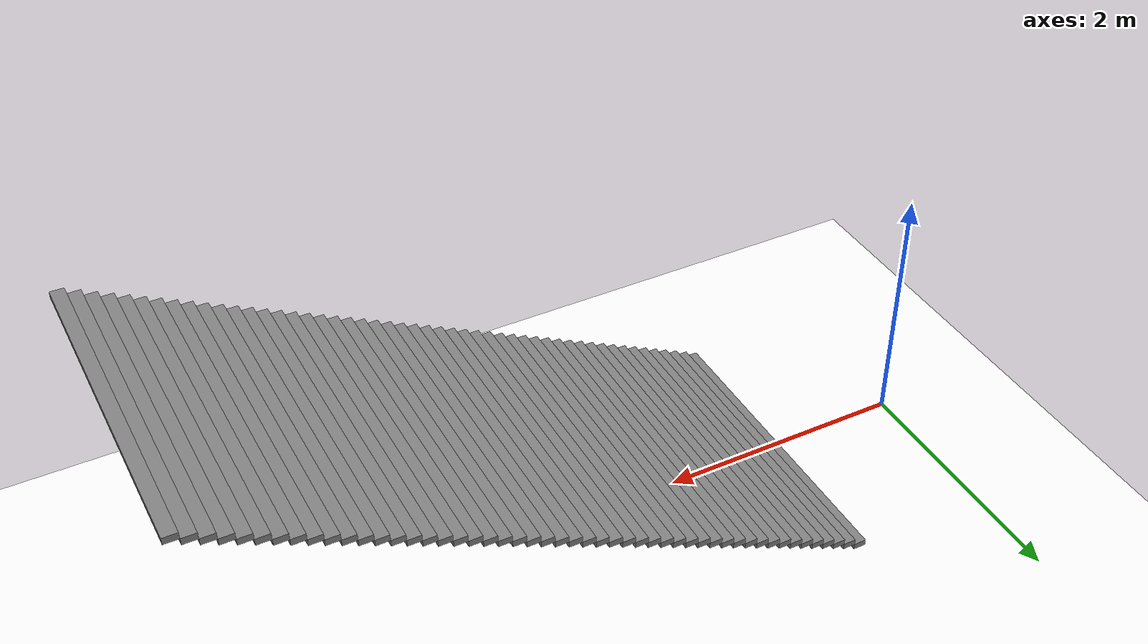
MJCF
<mujoco model="scene">

    <statistic center="0 0 0.1" extent="0.8"/>

    <visual>
        <headlight diffuse="0.6 0.6 0.6" ambient="0.3 0.3 0.3" specular="0 0 0"/>
        <rgba haze="0.99 0.99 0.99 1"/>
        <global azimuth="-130" elevation="-20"/>
    </visual>

    <asset>
        <texture
                type="skybox"
                builtin="gradient"
                rgb1="0.99 0.99 0.99"
                rgb2="0.99 0.99 0.99"
                width="512"
                height="3072"
        />
        <texture
                type="2d"
                name="groundplane"
                builtin="checker"
                mark="edge"
                rgb1="0.93 0.93 0.93"
                rgb2="1.0 1.0 1.0"
                markrgb="1 1 1"
                width="200"
                height="200"
        />
        <material name="groundplane" texture="groundplane" texuniform="true" texrepeat="5 5" reflectance="0.05"/>
    </asset>

    <worldbody>
        <light pos="0 0 1.5" dir="0 0 -1" directional="true"/>
        <geom name="floor" size="0 0 0.05" type="plane" material="groundplane"/>
        <geom pos="1.1 0.0 0.025" type="box" size="0.05 1.25 0.025" quat="1.0 0.0 0.0 0.0"/>
        <geom pos="1.2 0.0 0.07500000000000001" type="box" size="0.05 1.25 0.025" quat="1.0 0.0 0.0 0.0"/>
        <geom pos="1.3 0.0 0.125" type="box" size="0.05 1.25 0.025" quat="1.0 0.0 0.0 0.0"/>
        <geom pos="1.4 0.0 0.175" type="box" size="0.05 1.25 0.025" quat="1.0 0.0 0.0 0.0"/>
        <geom pos="1.5 0.0 0.22499999999999998" type="box" size="0.05 1.25 0.025" quat="1.0 0.0 0.0 0.0"/>
        <geom pos="1.6 0.0 0.27499999999999997" type="box" size="0.05 1.25 0.025" quat="1.0 0.0 0.0 0.0"/>
        <geom pos="1.7 0.0 0.32499999999999996" type="box" size="0.05 1.25 0.025" quat="1.0 0.0 0.0 0.0"/>
        <geom pos="1.7999999999999998 0.0 0.37499999999999994" type="box" size="0.05 1.25 0.025"
              quat="1.0 0.0 0.0 0.0"/>
        <geom pos="1.9 0.0 0.42499999999999993" type="box" size="0.05 1.25 0.025" quat="1.0 0.0 0.0 0.0"/>
        <geom pos="2.0 0.0 0.4749999999999999" type="box" size="0.05 1.25 0.025" quat="1.0 0.0 0.0 0.0"/>
        <geom pos="2.0999999999999996 0.0 0.5249999999999999" type="box" size="0.05 1.25 0.025" quat="1.0 0.0 0.0 0.0"/>
        <geom pos="2.2 0.0 0.575" type="box" size="0.05 1.25 0.025" quat="1.0 0.0 0.0 0.0"/>
        <geom pos="2.3 0.0 0.625" type="box" size="0.05 1.25 0.025" quat="1.0 0.0 0.0 0.0"/>
        <geom pos="2.4000000000000004 0.0 0.675" type="box" size="0.05 1.25 0.025" quat="1.0 0.0 0.0 0.0"/>
        <geom pos="2.5 0.0 0.7250000000000001" type="box" size="0.05 1.25 0.025" quat="1.0 0.0 0.0 0.0"/>
        <geom pos="2.6000000000000005 0.0 0.7750000000000001" type="box" size="0.05 1.25 0.025" quat="1.0 0.0 0.0 0.0"/>
        <geom pos="2.7 0.0 0.8250000000000002" type="box" size="0.05 1.25 0.025" quat="1.0 0.0 0.0 0.0"/>
        <geom pos="2.8000000000000007 0.0 0.8750000000000002" type="box" size="0.05 1.25 0.025" quat="1.0 0.0 0.0 0.0"/>
        <geom pos="2.9000000000000004 0.0 0.9250000000000003" type="box" size="0.05 1.25 0.025" quat="1.0 0.0 0.0 0.0"/>
        <geom pos="3.0000000000000004 0.0 0.9750000000000003" type="box" size="0.05 1.25 0.025" quat="1.0 0.0 0.0 0.0"/>
        <geom pos="3.1000000000000005 0.0 1.0250000000000004" type="box" size="0.05 1.25 0.025" quat="1.0 0.0 0.0 0.0"/>
        <geom pos="3.2000000000000006 0.0 1.0750000000000004" type="box" size="0.05 1.25 0.025" quat="1.0 0.0 0.0 0.0"/>
        <geom pos="3.3000000000000007 0.0 1.1250000000000004" type="box" size="0.05 1.25 0.025" quat="1.0 0.0 0.0 0.0"/>
        <geom pos="3.400000000000001 0.0 1.1750000000000005" type="box" size="0.05 1.25 0.025" quat="1.0 0.0 0.0 0.0"/>
        <geom pos="3.500000000000001 0.0 1.2250000000000005" type="box" size="0.05 1.25 0.025" quat="1.0 0.0 0.0 0.0"/>
        <geom pos="3.600000000000001 0.0 1.2750000000000006" type="box" size="0.05 1.25 0.025" quat="1.0 0.0 0.0 0.0"/>
        <geom pos="3.700000000000001 0.0 1.3250000000000006" type="box" size="0.05 1.25 0.025" quat="1.0 0.0 0.0 0.0"/>
        <geom pos="3.800000000000001 0.0 1.3750000000000007" type="box" size="0.05 1.25 0.025" quat="1.0 0.0 0.0 0.0"/>
        <geom pos="3.9000000000000012 0.0 1.4250000000000007" type="box" size="0.05 1.25 0.025" quat="1.0 0.0 0.0 0.0"/>
        <geom pos="4.000000000000002 0.0 1.4750000000000008" type="box" size="0.05 1.25 0.025" quat="1.0 0.0 0.0 0.0"/>
        <geom pos="4.100000000000001 0.0 1.5250000000000008" type="box" size="0.05 1.25 0.025" quat="1.0 0.0 0.0 0.0"/>
        <geom pos="4.200000000000001 0.0 1.5750000000000008" type="box" size="0.05 1.25 0.025" quat="1.0 0.0 0.0 0.0"/>
        <geom pos="4.300000000000002 0.0 1.6250000000000009" type="box" size="0.05 1.25 0.025" quat="1.0 0.0 0.0 0.0"/>
        <geom pos="4.400000000000002 0.0 1.675000000000001" type="box" size="0.05 1.25 0.025" quat="1.0 0.0 0.0 0.0"/>
        <geom pos="4.500000000000002 0.0 1.725000000000001" type="box" size="0.05 1.25 0.025" quat="1.0 0.0 0.0 0.0"/>
        <geom pos="4.600000000000001 0.0 1.775000000000001" type="box" size="0.05 1.25 0.025" quat="1.0 0.0 0.0 0.0"/>
        <geom pos="4.700000000000002 0.0 1.825000000000001" type="box" size="0.05 1.25 0.025" quat="1.0 0.0 0.0 0.0"/>
        <geom pos="4.8000000000000025 0.0 1.875000000000001" type="box" size="0.05 1.25 0.025" quat="1.0 0.0 0.0 0.0"/>
        <geom pos="4.900000000000002 0.0 1.9250000000000012" type="box" size="0.05 1.25 0.025" quat="1.0 0.0 0.0 0.0"/>
        <geom pos="5.000000000000002 0.0 1.9750000000000012" type="box" size="0.05 1.25 0.025" quat="1.0 0.0 0.0 0.0"/>
        <geom pos="5.100000000000001 0.0 2.0250000000000012" type="box" size="0.05 1.25 0.025" quat="1.0 0.0 0.0 0.0"/>
        <geom pos="5.200000000000001 0.0 2.075000000000001" type="box" size="0.05 1.25 0.025" quat="1.0 0.0 0.0 0.0"/>
        <geom pos="5.300000000000001 0.0 2.125000000000001" type="box" size="0.05 1.25 0.025" quat="1.0 0.0 0.0 0.0"/>
        <geom pos="5.4 0.0 2.1750000000000007" type="box" size="0.05 1.25 0.025" quat="1.0 0.0 0.0 0.0"/>
        <geom pos="5.5 0.0 2.2250000000000005" type="box" size="0.05 1.25 0.025" quat="1.0 0.0 0.0 0.0"/>
        <geom pos="5.6 0.0 2.2750000000000004" type="box" size="0.05 1.25 0.025" quat="1.0 0.0 0.0 0.0"/>
        <geom pos="5.699999999999999 0.0 2.325" type="box" size="0.05 1.25 0.025" quat="1.0 0.0 0.0 0.0"/>
        <geom pos="5.799999999999999 0.0 2.375" type="box" size="0.05 1.25 0.025" quat="1.0 0.0 0.0 0.0"/>
        <geom pos="5.899999999999999 0.0 2.425" type="box" size="0.05 1.25 0.025" quat="1.0 0.0 0.0 0.0"/>
        <geom pos="5.999999999999998 0.0 2.4749999999999996" type="box" size="0.05 1.25 0.025" quat="1.0 0.0 0.0 0.0"/>
    </worldbody>
</mujoco>
